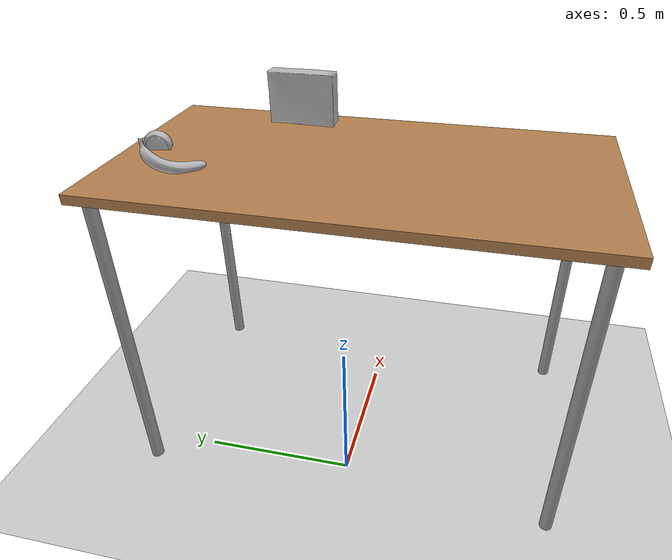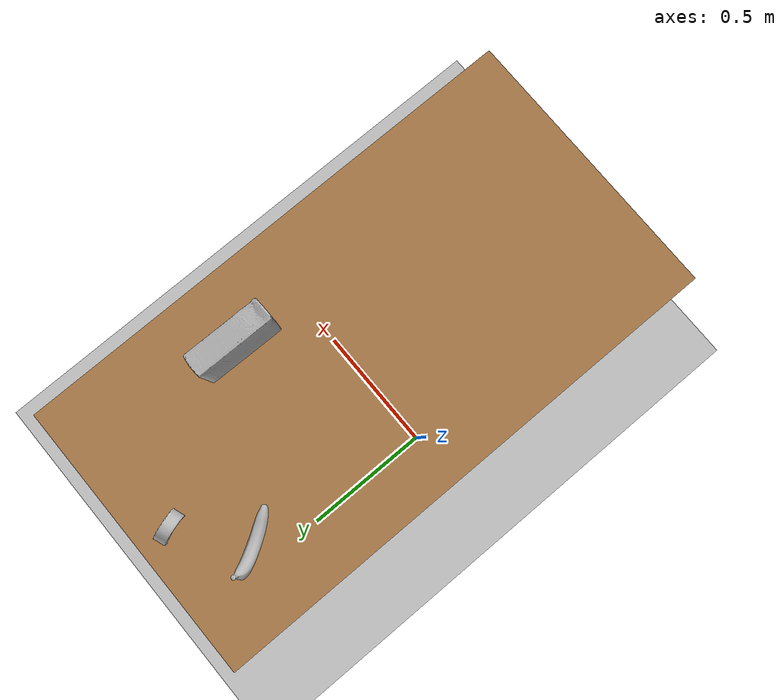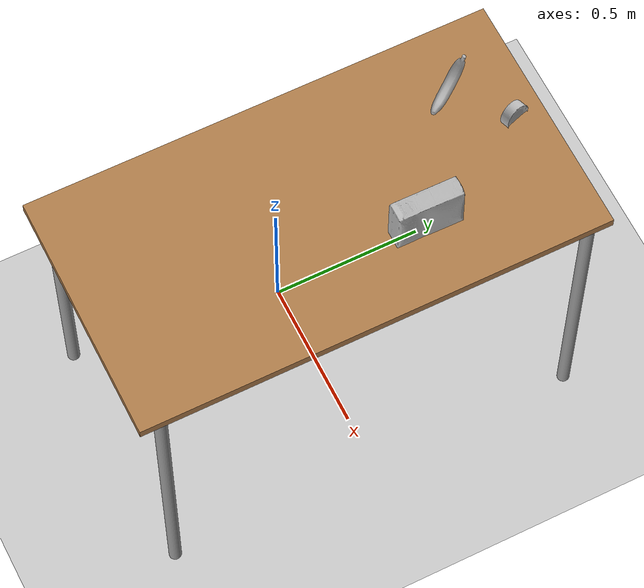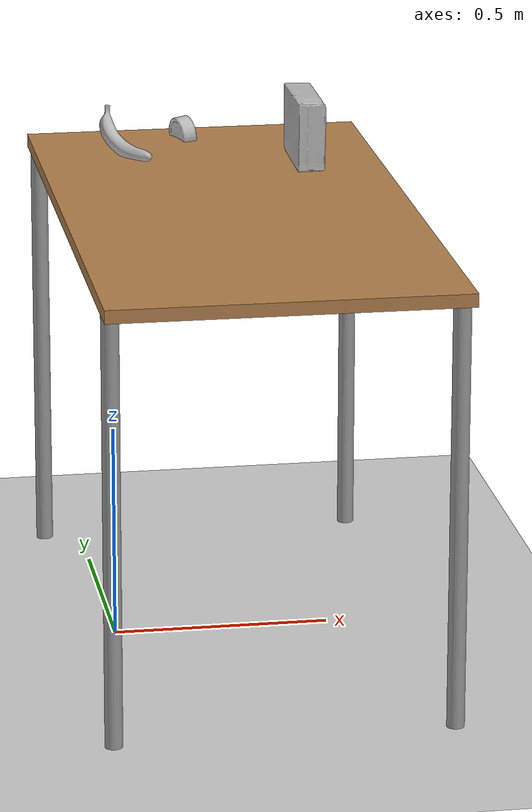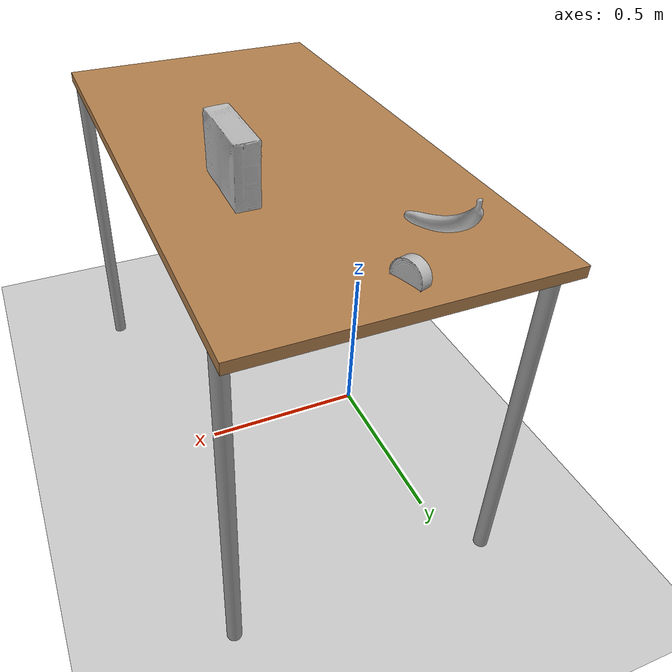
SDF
<?xml version="1.0" ?>
<sdf version="1.8">
  <world name="arm_and_table">

    <physics name="1ms" type="ode">
      <max_step_size>0.001</max_step_size>
      <real_time_factor>1.0</real_time_factor>
    </physics>

    <plugin filename="gz-sim-physics-system" name="gz::sim::systems::Physics"/>
    <plugin filename="gz-sim-user-commands-system" name="gz::sim::systems::UserCommands"/>
    <plugin filename="gz-sim-scene-broadcaster-system" name="gz::sim::systems::SceneBroadcaster"/>

    <scene>
      <shadows>false</shadows>
    </scene>

    <gui>
      <camera name="user_camera">
        <pose>1.5 -1.5 1.5 0 0.4 2.3</pose>
      </camera>
    </gui>

    <light type="directional" name="sun">
      <cast_shadows>true</cast_shadows>
      <pose>0 0 10 0 0 0</pose>
      <diffuse>0.8 0.8 0.8 1</diffuse>
      <specular>0.2 0.2 0.2 1</specular>
      <direction>-0.5 0.1 -0.9</direction>
    </light>

    <model name="ground_plane">
      <static>true</static>
      <link name="link">
        <collision name="collision">
          <geometry>
            <plane>
              <normal>0 0 1</normal>
              <size>100 100</size>
            </plane>
          </geometry>
        </collision>
        <visual name="visual">
          <geometry>
            <plane>
              <normal>0 0 1</normal>
              <size>100 100</size>
            </plane>
          </geometry>
          <material>
            <ambient>0.8 0.8 0.8 1</ambient>
            <diffuse>0.8 0.8 0.8 1</diffuse>
          </material>
        </visual>
      </link>
    </model>

    <!-- table -->
    <include>
      <uri>model://table</uri>
      <name>table</name>
      <pose>0.29 0 0 0 0 1.5708</pose>
    </include>

    <!-- bananas: spawn above YOUR table (your earlier working z was 1.05) -->
    <include>
      <uri>model://cracker_box</uri>
      <name>cracker_box1</name>
      <pose>0.5 0.35 1.15 1.57 0 0</pose>
    </include>

    <include>
      <uri>model://tuna_fish_can</uri>
      <name>tuna_fish_can1</name>
      <pose>0.25 0.63 1.05 0 -1.5 -2.82</pose>
    </include>

    <include>
      <uri>model://banana</uri>
      <name>banana1</name>
      <pose>0.11 0.53 1.05 0 -1.5 -1.0</pose>
    </include>

  </world>
</sdf>

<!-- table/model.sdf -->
<sdf version="1.5">
  <model name="table">
    <static>true</static>
    <link name="link">
      <collision name="surface">
        <pose>0 0 1.0 0 0 0</pose>
        <geometry>
          <box>
            <size>1.5 0.8 0.03</size>
          </box>
        </geometry>
        <surface>
          <friction>
            <ode>
              <mu>0.6</mu>
              <mu2>0.6</mu2>
            </ode>
          </friction>
        </surface>
      </collision>
      <visual name="visual1">
        <pose>0 0 1.0 0 0 0</pose>
        <geometry>
          <box>
            <size>1.5 0.8 0.03</size>
          </box>
        </geometry>
        <material>
          <script>
            <uri>model://media/materials/scripts/gazebo.material</uri>
            <name>Gazebo/Wood</name>
          </script>
        </material>
      </visual>
      <collision name="front_left_leg">
        <pose>0.68 0.38 0.5 0 0 0</pose>
        <geometry>
          <cylinder>
            <radius>0.02</radius>
            <length>1.0</length>
          </cylinder>
        </geometry>
      </collision>
      <visual name="front_left_leg">
        <pose>0.68 0.38 0.5 0 0 0</pose>
        <geometry>
          <cylinder>
            <radius>0.02</radius>
            <length>1.0</length>
          </cylinder>
        </geometry>
        <material>
          <script>
            <uri>model://media/materials/scripts/gazebo.material</uri>
            <name>Gazebo/Grey</name>
          </script>
        </material>
      </visual>
      <collision name="front_right_leg">
        <pose>0.68 -0.38 0.5 0 0 0</pose>
        <geometry>
          <cylinder>
            <radius>0.02</radius>
            <length>1.0</length>
          </cylinder>
        </geometry>
      </collision>
      <visual name="front_right_leg">
        <pose>0.68 -0.38 0.5 0 0 0</pose>
        <geometry>
          <cylinder>
            <radius>0.02</radius>
            <length>1.0</length>
          </cylinder>
        </geometry>
        <material>
          <script>
            <uri>model://media/materials/scripts/gazebo.material</uri>
            <name>Gazebo/Grey</name>
          </script>
        </material>
      </visual>
      <collision name="back_right_leg">
        <pose>-0.68 -0.38 0.5 0 0 0</pose>
        <geometry>
          <cylinder>
            <radius>0.02</radius>
            <length>1.0</length>
          </cylinder>
        </geometry>
      </collision>
      <visual name="back_right_leg">
        <pose>-0.68 -0.38 0.5 0 0 0</pose>
        <geometry>
          <cylinder>
            <radius>0.02</radius>
            <length>1.0</length>
          </cylinder>
        </geometry>
        <material>
          <script>
            <uri>model://media/materials/scripts/gazebo.material</uri>
            <name>Gazebo/Grey</name>
          </script>
        </material>
      </visual>
      <collision name="back_left_leg">
        <pose>-0.68 0.38 0.5 0 0 0</pose>
        <geometry>
          <cylinder>
            <radius>0.02</radius>
            <length>1.0</length>
          </cylinder>
        </geometry>
      </collision>
      <visual name="back_left_leg">
        <pose>-0.68 0.38 0.5 0 0 0</pose>
        <geometry>
          <cylinder>
            <radius>0.02</radius>
            <length>1.0</length>
          </cylinder>
        </geometry>
        <material>
          <script>
            <uri>model://media/materials/scripts/gazebo.material</uri>
            <name>Gazebo/Grey</name>
          </script>
        </material>
      </visual>
    </link>
  </model>
</sdf>

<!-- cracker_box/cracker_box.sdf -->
<sdf version="1.6">
  <model name="cracker_box">
    <static>false</static>

    <link name="link">

      <inertial>
        <pose>0 0 0 0 0 0</pose>
        <mass>0.41</mass>
        <inertia>
          <ixx>0.0017</ixx>
          <ixy>0</ixy>
          <ixz>0</ixz>
          <iyy>0.0030</iyy>
          <iyz>0</iyz>
          <izz>0.0024</izz>
        </inertia>
      </inertial>

      <collision name="collision">
        <pose>0 0 0 0 0 0</pose>
        <geometry>
          <mesh>
            <uri>model://cracker_box/meshes/nontextured.stl</uri>
            <scale>1 1 1</scale>
          </mesh>
        </geometry>
        <surface>
          <friction>
            <ode>
              <mu>1.2</mu>
              <mu2>1.2</mu2>
            </ode>
          </friction>
          <contact>
            <ode>
              <kp>50000</kp>
              <kd>50</kd>
              <min_depth>0.001</min_depth>
              <max_vel>0.2</max_vel>
            </ode>
          </contact>
        </surface>
      </collision>

      <visual name="visual">
        <pose>0 0 0 0 0 0</pose>
        <geometry>
          <mesh>
            <uri>model://cracker_box/meshes/textured.dae</uri>
            <scale>1 1 1</scale>
          </mesh>
        </geometry>
      </visual>

      <velocity_decay>
        <linear>0.2</linear>
        <angular>0.2</angular>
      </velocity_decay>

    </link>
  </model>
</sdf>

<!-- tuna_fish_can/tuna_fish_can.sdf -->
<sdf version="1.6">
  <model name="tuna_fish_can">
    <static>false</static>

    <link name="link">

      <!-- Keep inertial simple and unrotated -->
      <inertial>
        <pose>0 0 0 0 0 0</pose>
        <mass>0.17</mass>
        <inertia>
          <ixx>6.1e-05</ixx>
          <ixy>0</ixy>
          <ixz>0</ixz>
          <iyy>6.1e-05</iyy>
          <iyz>0</iyz>
          <izz>7.7e-05</izz>
        </inertia>
      </inertial>

      <collision name="collision">
        <pose>0 0 0 0 0 0</pose>
        <geometry>
          <mesh>
            <uri>model://tuna_fish_can/meshes/nontextured.stl</uri>
            <scale>1 1 1</scale>
          </mesh>
        </geometry>

        <surface>
          <friction>
            <ode>
              <mu>1.2</mu>
              <mu2>1.2</mu2>
            </ode>
          </friction>

          <contact>
            <ode>
              <kp>50000</kp>
              <kd>50</kd>
              <min_depth>0.001</min_depth>
              <max_vel>0.2</max_vel>
            </ode>
          </contact>
        </surface>
      </collision>

      <visual name="visual">
        <pose>0 0 0 0 0 0</pose>
        <geometry>
          <mesh>
            <!-- Make sure this filename matches what's inside tuna_fish_can/meshes -->
            <uri>model://tuna_fish_can/meshes/textured.dae</uri>
            <scale>1 1 1</scale>
          </mesh>
        </geometry>
      </visual>

      <velocity_decay>
        <linear>0.2</linear>
        <angular>0.2</angular>
      </velocity_decay>

    </link>
  </model>
</sdf>

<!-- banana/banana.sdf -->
<sdf version="1.6">
  <model name="banana">
    <static>false</static>

    <link name="link">

      <!-- Keep inertial simple and unrotated -->
      <inertial>
        <pose>0 0 0 0 0 0</pose>
        <mass>0.12</mass>
        <inertia>
          <ixx>0.0004</ixx>
          <ixy>0</ixy>
          <ixz>0</ixz>
          <iyy>0.0004</iyy>
          <iyz>0</iyz>
          <izz>0.0001</izz>
        </inertia>
      </inertial>

      <!-- Collision: rotate mesh ONCE here to make the banana "flat" -->
      <collision name="collision">
        <pose>0 0 0 1.5708 0 0</pose>
        <geometry>
          <mesh>
            <uri>model://banana/meshes/nontextured.stl</uri>
            <scale>1 1 1</scale>
          </mesh>
        </geometry>

        <surface>
          <friction>
            <ode>
              <mu>1.5</mu>
              <mu2>1.5</mu2>
            </ode>
          </friction>

          <contact>
            <ode>
              <kp>50000</kp>
              <kd>100</kd>
              <min_depth>0.001</min_depth>
              <max_vel>0.2</max_vel>
            </ode>
          </contact>
        </surface>
      </collision>

      <!-- Visual: MUST match collision orientation -->
      <visual name="visual">
        <pose>0 0 0 1.5708 0 0</pose>
        <geometry>
          <mesh>
            <uri>model://banana/meshes/textured.dae</uri>
            <scale>1 1 1</scale>
          </mesh>
        </geometry>
      </visual>

      <!-- Optional: helps stop micro sliding/rolling -->
      <velocity_decay>
        <linear>0.2</linear>
        <angular>0.2</angular>
      </velocity_decay>

    </link>
  </model>
</sdf>
